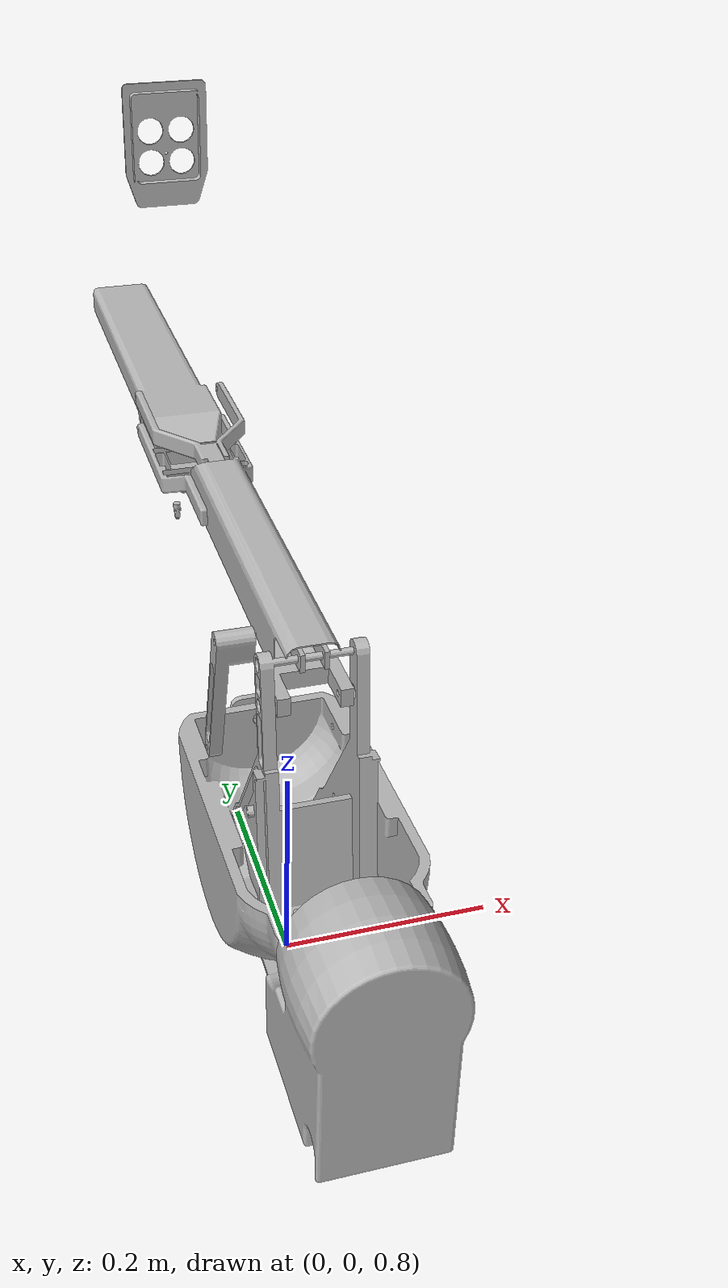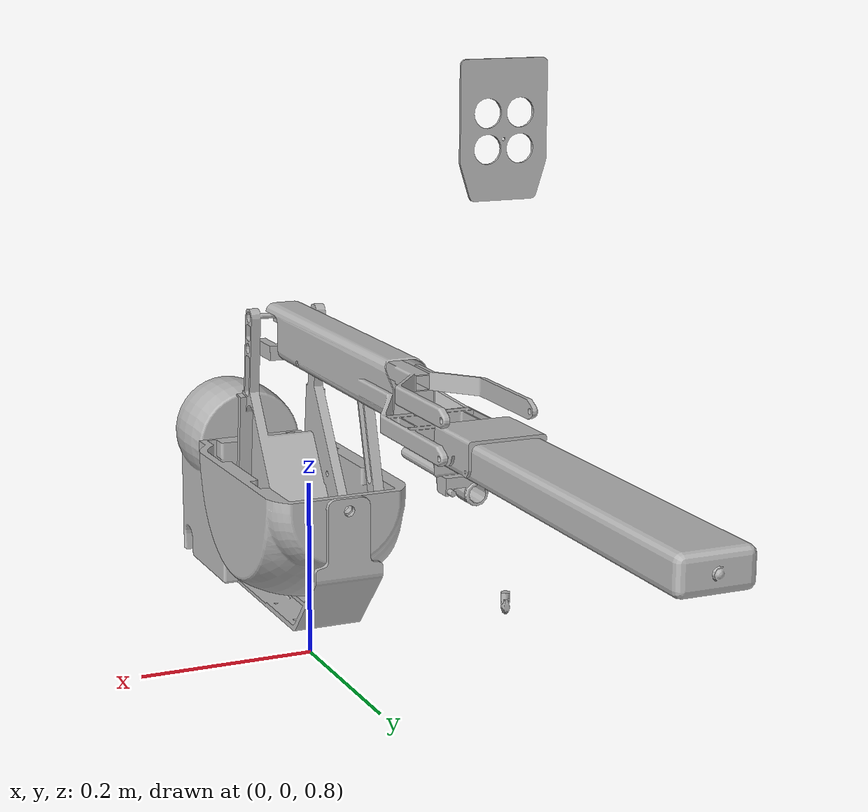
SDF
<sdf version="1.6">
  <model name="dvrk_psm">

  <include>
    <uri>model://PSM</uri>
      <name>PSM1</name>
      <pose> 0 0 1 0 0 0</pose>
  </include>

  <joint name='PSM1::rev_joint' type='fixed'>
   <child>PSM1::base_link</child>
   <parent>world</parent>
   <axis>
     <limit>
       <lower>-1.57</lower>
       <upper>1.57</upper>
     </limit>
     <dynamics>
       <damping>0</damping>
     </dynamics>
     <xyz>0 0 1</xyz>
   </axis>
 </joint>

 <plugin name='dvrk_plugins' filename='libdvrk_plugins.so'/>
 </model>
</sdf>

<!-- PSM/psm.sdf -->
<sdf version='1.6'>
  <model name='PSM'>
    <link name='base_link'>
      <pose frame=''>0 0 0 0 -0 0</pose>
      <inertial>
        <pose frame=''>-0 -0.17016 -0.085607 0 -0 0</pose>
        <mass>2.0161</mass>
        <inertia>
          <ixx>0</ixx>
          <ixy>0</ixy>
          <ixz>0</ixz>
          <iyy>0</iyy>
          <iyz>0</iyz>
          <izz>0</izz>
        </inertia>
      </inertial>
      <collision name='base_link_collision'>
        <pose frame=''>0 0 0 0 -0 0</pose>
        <geometry>
          <mesh>
            <scale>1 1 1</scale>
            <uri>model://PSM/meshes/base_link.STL</uri>
          </mesh>
        </geometry>
      </collision>
      <visual name='base_link_visual'>
        <pose frame=''>0 0 0 0 -0 0</pose>
        <geometry>
          <mesh>
            <scale>1 1 1</scale>
            <uri>model://PSM/meshes/base_link.STL</uri>
          </mesh>
        </geometry>
      </visual>
    </link>
    <link name='yaw_Link'>
      <pose frame=''>0 0 0 1.58642 -1.57079 -3e-06</pose>
      <inertial>
        <pose frame=''>-0.038769 7.8e-05 0.041596 0 -0 0</pose>
        <mass>1.4705</mass>
        <inertia>
          <ixx>0</ixx>
          <ixy>0</ixy>
          <ixz>0</ixz>
          <iyy>0</iyy>
          <iyz>0</iyz>
          <izz>0</izz>
        </inertia>
      </inertial>
      <collision name='yaw_Link_collision'>
        <pose frame=''>0 0 0 0 -0 0</pose>
        <geometry>
          <mesh>
            <scale>1 1 1</scale>
            <uri>model://PSM/meshes/yaw_Link.STL</uri>
          </mesh>
        </geometry>
      </collision>
      <visual name='yaw_Link_visual'>
        <pose frame=''>0 0 0 0 -0 0</pose>
        <geometry>
          <mesh>
            <scale>1 1 1</scale>
            <uri>model://PSM/meshes/yaw_Link.STL</uri>
          </mesh>
        </geometry>
      </visual>
    </link>
    <joint name='yaw_joint' type='revolute'>
      <child>yaw_Link</child>
      <parent>base_link</parent>
      <axis>
        <xyz>0 -1 -0</xyz>
        <limit>
          <lower>-1.605</lower>
          <upper>1.5994</upper>
          <effort>1000</effort>
          <velocity>10</velocity>
        </limit>
        <dynamics>
          <spring_reference>0</spring_reference>
          <spring_stiffness>0</spring_stiffness>
        </dynamics>
        <use_parent_model_frame>1</use_parent_model_frame>
      </axis>
    </joint>
    <link name='pitch_back_Link'>
      <pose frame=''>-0 -0.0296 0 1.5708 -1.28007 -1.5708</pose>
      <inertial>
        <pose frame=''>-0.012175 -0.036897 3.5e-05 0 -0 0</pose>
        <mass>0.99511</mass>
        <inertia>
          <ixx>0</ixx>
          <ixy>0</ixy>
          <ixz>0</ixz>
          <iyy>0</iyy>
          <iyz>0</iyz>
          <izz>0</izz>
        </inertia>
      </inertial>
      <collision name='pitch_back_Link_collision'>
        <pose frame=''>0 0 0 0 -0 0</pose>
        <geometry>
          <mesh>
            <scale>1 1 1</scale>
            <uri>model://PSM/meshes/pitch_back_Link.STL</uri>
          </mesh>
        </geometry>
      </collision>
      <visual name='pitch_back_Link_visual'>
        <pose frame=''>0 0 0 0 -0 0</pose>
        <geometry>
          <mesh>
            <scale>1 1 1</scale>
            <uri>model://PSM/meshes/pitch_back_Link.STL</uri>
          </mesh>
        </geometry>
      </visual>
    </link>
    <joint name='pitch_back_joint' type='revolute'>
      <child>pitch_back_Link</child>
      <parent>yaw_Link</parent>
      <axis>
        <xyz>-1 0 -0</xyz>
        <limit>
          <lower>-0.93556</lower>
          <upper>0.94249</upper>
          <effort>1000</effort>
          <velocity>10</velocity>
        </limit>
        <dynamics>
          <spring_reference>0</spring_reference>
          <spring_stiffness>0</spring_stiffness>
        </dynamics>
        <use_parent_model_frame>1</use_parent_model_frame>
      </axis>
    </joint>
    <link name='pitch_bottom_Link'>
      <pose frame=''>-0 -0.072597 0.143705 -1.5708 -2.4e-05 1.5708</pose>
      <inertial>
        <pose frame=''>0.25683 -0.010348 -6e-06 0 -0 0</pose>
        <mass>0.44569</mass>
        <inertia>
          <ixx>0</ixx>
          <ixy>0</ixy>
          <ixz>0</ixz>
          <iyy>0</iyy>
          <iyz>0</iyz>
          <izz>0</izz>
        </inertia>
      </inertial>
      <collision name='pitch_bottom_Link_collision'>
        <pose frame=''>0 0 0 0 -0 0</pose>
        <geometry>
          <mesh>
            <scale>1 1 1</scale>
            <uri>model://PSM/meshes/pitch_bottom_Link.STL</uri>
          </mesh>
        </geometry>
      </collision>
      <visual name='pitch_bottom_Link_visual'>
        <pose frame=''>0 0 0 0 -0 0</pose>
        <geometry>
          <mesh>
            <scale>1 1 1</scale>
            <uri>model://PSM/meshes/pitch_bottom_Link.STL</uri>
          </mesh>
        </geometry>
      </visual>
    </link>
    <joint name='pitch_bottom_joint' type='revolute'>
      <child>pitch_bottom_Link</child>
      <parent>pitch_back_Link</parent>
      <axis>
        <xyz>-1 0 -0</xyz>
        <limit>
          <lower>-0.94249</lower>
          <upper>0.93556</upper>
          <effort>1000</effort>
          <velocity>10</velocity>
        </limit>
        <dynamics>
          <spring_reference>0</spring_reference>
          <spring_stiffness>0</spring_stiffness>
        </dynamics>
        <use_parent_model_frame>1</use_parent_model_frame>
      </axis>
    </joint>
    <link name='pitch_end_Link'>
      <pose frame=''>0 0.443403 0.143718 -1.5708 -2.4e-05 1.5708</pose>
      <inertial>
        <pose frame=''>-0.001929 -0.13613 -0 0 -0 0</pose>
        <mass>2.091</mass>
        <inertia>
          <ixx>0</ixx>
          <ixy>0</ixy>
          <ixz>0</ixz>
          <iyy>0</iyy>
          <iyz>0</iyz>
          <izz>0</izz>
        </inertia>
      </inertial>
      <collision name='pitch_end_Link_collision'>
        <pose frame=''>0 0 0 0 -0 0</pose>
        <geometry>
          <mesh>
            <scale>1 1 1</scale>
            <uri>model://PSM/meshes/pitch_end_Link.STL</uri>
          </mesh>
        </geometry>
      </collision>
      <visual name='pitch_end_Link_visual'>
        <pose frame=''>0 0 0 0 -0 0</pose>
        <geometry>
          <mesh>
            <scale>1 1 1</scale>
            <uri>model://PSM/meshes/pitch_end_Link.STL</uri>
          </mesh>
        </geometry>
      </visual>
    </link>
    <joint name='pitch_end_joint' type='revolute'>
      <child>pitch_end_Link</child>
      <parent>pitch_bottom_Link</parent>
      <axis>
        <xyz>-1 0 -0</xyz>
        <limit>
          <lower>-0.93556</lower>
          <upper>0.94249</upper>
          <effort>1000</effort>
          <velocity>10</velocity>
        </limit>
        <dynamics>
          <spring_reference>0</spring_reference>
          <spring_stiffness>0</spring_stiffness>
        </dynamics>
        <use_parent_model_frame>1</use_parent_model_frame>
      </axis>
    </joint>
    <link name='main_insertion_Link'>
      <pose frame=''>0 0.486396 0.431809 -3.14159 2.4e-05 -1.5708</pose>
      <inertial>
        <pose frame=''>0.004056 -0.000109 0.010292 0 -0 0</pose>
        <mass>0.22491</mass>
        <inertia>
          <ixx>1.7667e-05</ixx>
          <ixy>-6.2173e-08</ixy>
          <ixz>1.2562e-05</ixz>
          <iyy>2.6598e-05</iyy>
          <iyz>8.744e-08</iyz>
          <izz>8.9322e-06</izz>
        </inertia>
      </inertial>
      <collision name='main_insertion_Link_collision'>
        <pose frame=''>0 0 0 0 -0 0</pose>
        <geometry>
          <mesh>
            <scale>1 1 1</scale>
            <uri>model://PSM/meshes/main_insertion_Link.STL</uri>
          </mesh>
        </geometry>
      </collision>
      <visual name='main_insertion_Link_visual'>
        <pose frame=''>0 0 0 0 -0 0</pose>
        <geometry>
          <mesh>
            <scale>1 1 1</scale>
            <uri>model://PSM/meshes/main_insertion_Link.STL</uri>
          </mesh>
        </geometry>
      </visual>
    </link>
    <joint name='main_insertion_joint' type='prismatic'>
      <child>main_insertion_Link</child>
      <parent>pitch_end_Link</parent>
      <axis>
        <xyz>0 -2.4e-05 -1</xyz>
        <limit>
          <lower>0</lower>
          <upper>0.24</upper>
          <effort>1000</effort>
          <velocity>1</velocity>
        </limit>
        <dynamics>
          <spring_reference>0</spring_reference>
          <spring_stiffness>0</spring_stiffness>
        </dynamics>
        <use_parent_model_frame>1</use_parent_model_frame>
      </axis>
    </joint>
    <link name='tool_roll_link'>
      <pose frame=''>0 0.486406 0.015609 3.14159 -2.4e-05 1.5708</pose>
      <inertial>
        <pose frame=''>-0 -0 -0.005823 0 -0 0</pose>
        <mass>0.00033225</mass>
        <inertia>
          <ixx>0</ixx>
          <ixy>0</ixy>
          <ixz>0</ixz>
          <iyy>0</iyy>
          <iyz>0</iyz>
          <izz>0</izz>
        </inertia>
      </inertial>
      <collision name='tool_roll_link_collision'>
        <pose frame=''>0 0 0 0 -0 0</pose>
        <geometry>
          <mesh>
            <scale>1 1 1</scale>
            <uri>model://PSM/meshes/tool_roll_link.STL</uri>
          </mesh>
        </geometry>
      </collision>
      <visual name='tool_roll_link_visual'>
        <pose frame=''>0 0 0 0 -0 0</pose>
        <geometry>
          <mesh>
            <scale>1 1 1</scale>
            <uri>model://PSM/meshes/tool_roll_link.STL</uri>
          </mesh>
        </geometry>
      </visual>
    </link>
    <joint name='tool_roll_joint' type='revolute'>
      <child>tool_roll_link</child>
      <parent>main_insertion_Link</parent>
      <axis>
        <xyz>-0 -2.4e-05 1</xyz>
        <limit>
          <lower>-3.14159</lower>
          <upper>3.14159</upper>
          <effort>1000</effort>
          <velocity>10</velocity>
        </limit>
        <dynamics>
          <spring_reference>0</spring_reference>
          <spring_stiffness>0</spring_stiffness>
        </dynamics>
        <use_parent_model_frame>1</use_parent_model_frame>
      </axis>
    </joint>
    <link name='tool_pitch_link'>
      <pose frame=''>0 0.486406 0.015609 -1.5708 1.57077 1.5708</pose>
      <inertial>
        <pose frame=''>0.003577 -4.9e-05 4e-06 0 -0 0</pose>
        <mass>0.00025977</mass>
        <inertia>
          <ixx>0</ixx>
          <ixy>0</ixy>
          <ixz>0</ixz>
          <iyy>0</iyy>
          <iyz>0</iyz>
          <izz>0</izz>
        </inertia>
      </inertial>
      <collision name='tool_pitch_link_collision'>
        <pose frame=''>0 0 0 0 -0 0</pose>
        <geometry>
          <mesh>
            <scale>1 1 1</scale>
            <uri>model://PSM/meshes/tool_pitch_link.STL</uri>
          </mesh>
        </geometry>
      </collision>
      <visual name='tool_pitch_link_visual'>
        <pose frame=''>0 0 0 0 -0 0</pose>
        <geometry>
          <mesh>
            <scale>1 1 1</scale>
            <uri>model://PSM/meshes/tool_pitch_link.STL</uri>
          </mesh>
        </geometry>
      </visual>
    </link>
    <joint name='tool_pitch_joint' type='revolute'>
      <child>tool_pitch_link</child>
      <parent>tool_roll_link</parent>
      <axis>
        <xyz>1 -0 0</xyz>
        <limit>
          <lower>-1.5708</lower>
          <upper>1.5708</upper>
          <effort>1000</effort>
          <velocity>10</velocity>
        </limit>
        <dynamics>
          <spring_reference>0</spring_reference>
          <spring_stiffness>0</spring_stiffness>
        </dynamics>
        <use_parent_model_frame>1</use_parent_model_frame>
      </axis>
    </joint>
    <link name='tool_yaw_link'>
      <pose frame=''>0 0.486456 0.006509 1.57077 0 3.14159</pose>
      <inertial>
        <pose frame=''>-0 0 -5e-05 0 -0 0</pose>
        <mass>6.6366e-06</mass>
        <inertia>
          <ixx>0</ixx>
          <ixy>0</ixy>
          <ixz>0</ixz>
          <iyy>0</iyy>
          <iyz>0</iyz>
          <izz>0</izz>
        </inertia>
      </inertial>
      <collision name='tool_yaw_link_collision'>
        <pose frame=''>0 0 0 0 -0 0</pose>
        <geometry>
          <mesh>
            <scale>1 1 1</scale>
            <uri>model://PSM/meshes/tool_yaw_link.STL</uri>
          </mesh>
        </geometry>
      </collision>
      <visual name='tool_yaw_link_visual'>
        <pose frame=''>0 0 0 0 -0 0</pose>
        <geometry>
          <mesh>
            <scale>1 1 1</scale>
            <uri>model://PSM/meshes/tool_yaw_link.STL</uri>
          </mesh>
        </geometry>
      </visual>
    </link>
    <joint name='tool_yaw_joint' type='revolute'>
      <child>tool_yaw_link</child>
      <parent>tool_pitch_link</parent>
      <axis>
        <xyz>0 1 2.4e-05</xyz>
        <limit>
          <lower>-1.5708</lower>
          <upper>1.5708</upper>
          <effort>1000</effort>
          <velocity>10</velocity>
        </limit>
        <dynamics>
          <spring_reference>0</spring_reference>
          <spring_stiffness>0</spring_stiffness>
        </dynamics>
        <use_parent_model_frame>1</use_parent_model_frame>
      </axis>
    </joint>
    <link name='tool_gripper1_link'>
      <pose frame=''>0 0.486456 0.006509 1.57077 0 3.14159</pose>
      <inertial>
        <pose frame=''>0.000189 0.001353 -0.000917 0 -0 0</pose>
        <mass>3.907e-05</mass>
        <inertia>
          <ixx>0</ixx>
          <ixy>0</ixy>
          <ixz>0</ixz>
          <iyy>0</iyy>
          <iyz>0</iyz>
          <izz>0</izz>
        </inertia>
      </inertial>
      <collision name='tool_gripper1_link_collision'>
        <pose frame=''>0 0 0 0 -0 0</pose>
        <geometry>
          <mesh>
            <scale>1 1 1</scale>
            <uri>model://PSM/meshes/tool_gripper1_link.STL</uri>
          </mesh>
        </geometry>
      </collision>
      <visual name='tool_gripper1_link_visual'>
        <pose frame=''>0 0 0 0 -0 0</pose>
        <geometry>
          <mesh>
            <scale>1 1 1</scale>
            <uri>model://PSM/meshes/tool_gripper1_link.STL</uri>
          </mesh>
        </geometry>
      </visual>
    </link>
    <joint name='tool_gripper1_joint' type='revolute'>
      <child>tool_gripper1_link</child>
      <parent>tool_yaw_link</parent>
      <axis>
        <xyz>0 1 2.4e-05</xyz>
        <limit>
          <lower>0</lower>
          <upper>1</upper>
          <effort>0</effort>
          <velocity>0</velocity>
        </limit>
        <dynamics>
          <spring_reference>0</spring_reference>
          <spring_stiffness>0</spring_stiffness>
        </dynamics>
        <use_parent_model_frame>1</use_parent_model_frame>
      </axis>
    </joint>
    <link name='tool_gripper2_link'>
      <pose frame=''>0 0.486456 0.006509 1.57077 0 3.14159</pose>
      <inertial>
        <pose frame=''>-0.000189 0.001353 0.000907 0 -0 0</pose>
        <mass>3.907e-05</mass>
        <inertia>
          <ixx>0</ixx>
          <ixy>0</ixy>
          <ixz>0</ixz>
          <iyy>0</iyy>
          <iyz>0</iyz>
          <izz>0</izz>
        </inertia>
      </inertial>
      <collision name='tool_gripper2_link_collision'>
        <pose frame=''>0 0 0 0 -0 0</pose>
        <geometry>
          <mesh>
            <scale>1 1 1</scale>
            <uri>model://PSM/meshes/tool_gripper2_link.STL</uri>
          </mesh>
        </geometry>
      </collision>
      <visual name='tool_gripper2_link_visual'>
        <pose frame=''>0 0 0 0 -0 0</pose>
        <geometry>
          <mesh>
            <scale>1 1 1</scale>
            <uri>model://PSM/meshes/tool_gripper2_link.STL</uri>
          </mesh>
        </geometry>
      </visual>
    </link>
    <joint name='tool_gripper2_joint' type='revolute'>
      <child>tool_gripper2_link</child>
      <parent>tool_yaw_link</parent>
      <axis>
        <xyz>0 1 2.4e-05</xyz>
        <limit>
          <lower>0</lower>
          <upper>1</upper>
          <effort>0</effort>
          <velocity>0</velocity>
        </limit>
        <dynamics>
          <spring_reference>0</spring_reference>
          <spring_stiffness>0</spring_stiffness>
        </dynamics>
        <use_parent_model_frame>1</use_parent_model_frame>
      </axis>
    </joint>
    <link name='pitch_top_Link'>
      <pose frame=''>-0 -0.068717 0.179999 -1.5708 0 1.5708</pose>
      <inertial>
        <pose frame=''>0.31246 -0.000566 -0 0 -0 0</pose>
        <mass>0.17841</mass>
        <inertia>
          <ixx>0</ixx>
          <ixy>0</ixy>
          <ixz>0</ixz>
          <iyy>0</iyy>
          <iyz>0</iyz>
          <izz>0</izz>
        </inertia>
      </inertial>
      <collision name='pitch_top_Link_collision'>
        <pose frame=''>0 0 0 0 -0 0</pose>
        <geometry>
          <mesh>
            <scale>1 1 1</scale>
            <uri>model://PSM/meshes/pitch_top_Link.STL</uri>
          </mesh>
        </geometry>
      </collision>
      <visual name='pitch_top_Link_visual'>
        <pose frame=''>0 0 0 0 -0 0</pose>
        <geometry>
          <mesh>
            <scale>1 1 1</scale>
            <uri>model://PSM/meshes/pitch_top_Link.STL</uri>
          </mesh>
        </geometry>
      </visual>
    </link>
    <joint name='pitch_top_joint' type='revolute'>
      <child>pitch_top_Link</child>
      <parent>pitch_back_Link</parent>
      <axis>
        <xyz>-1 0 -0</xyz>
        <limit>
          <lower>-0.94249</lower>
          <upper>0.93556</upper>
          <effort>1000</effort>
          <velocity>10</velocity>
        </limit>
        <dynamics>
          <spring_reference>0</spring_reference>
          <spring_stiffness>0</spring_stiffness>
        </dynamics>
        <use_parent_model_frame>1</use_parent_model_frame>
      </axis>
    </joint>
    <link name='pitch_front_Link'>
      <pose frame=''>0 0.0664 0 1.5708 -1.28007 -1.5708</pose>
      <inertial>
        <pose frame=''>0.096269 0 0.047551 0 -0 0</pose>
        <mass>0.074425</mass>
        <inertia>
          <ixx>0</ixx>
          <ixy>0</ixy>
          <ixz>0</ixz>
          <iyy>0</iyy>
          <iyz>0</iyz>
          <izz>0</izz>
        </inertia>
      </inertial>
      <collision name='pitch_front_Link_collision'>
        <pose frame=''>0 0 0 0 -0 0</pose>
        <geometry>
          <mesh>
            <scale>1 1 1</scale>
            <uri>model://PSM/meshes/pitch_front_Link.STL</uri>
          </mesh>
        </geometry>
      </collision>
      <visual name='pitch_front_Link_visual'>
        <pose frame=''>0 0 0 0 -0 0</pose>
        <geometry>
          <mesh>
            <scale>1 1 1</scale>
            <uri>model://PSM/meshes/pitch_front_Link.STL</uri>
          </mesh>
        </geometry>
      </visual>
    </link>
    <joint name='pitch_front_joint' type='revolute'>
      <child>pitch_front_Link</child>
      <parent>yaw_Link</parent>
      <axis>
        <xyz>-1 0 -0</xyz>
        <limit>
          <lower>-0.93556</lower>
          <upper>0.94249</upper>
          <effort>1000</effort>
          <velocity>10</velocity>
        </limit>
        <dynamics>
          <spring_reference>0</spring_reference>
          <spring_stiffness>0</spring_stiffness>
        </dynamics>
        <use_parent_model_frame>1</use_parent_model_frame>
      </axis>
    </joint>

    <joint name='pitch_front_bottom_joint' type='revolute'>
      <pose>0.096 0 0 0 0 0 </pose>
      <child>pitch_bottom_Link</child>
      <parent>pitch_front_Link</parent>
      <axis>
        <xyz>-1 0 0</xyz>
        <limit>
          <lower>-0.93556</lower>
          <upper>0.94249</upper>
          <effort>1000</effort>
          <velocity>1</velocity>
        </limit>
        <dynamics>
          <spring_reference>0</spring_reference>
          <spring_stiffness>0</spring_stiffness>
        </dynamics>
        <use_parent_model_frame>1</use_parent_model_frame>
      </axis>
    </joint>

    <joint name='pitch_top_end_joint' type='revolute'>
      <pose>0.00388 -0.036293189  0 0 0 0 </pose>
      <child>pitch_end_Link</child>
      <parent>pitch_top_Link</parent>
      <axis>
        <xyz>-1 0 0</xyz>
        <limit>
          <lower>-0.93556</lower>
          <upper>0.94249</upper>
          <effort>1000</effort>
          <velocity>1</velocity>
        </limit>
        <dynamics>
          <spring_reference>0</spring_reference>
          <spring_stiffness>0</spring_stiffness>
        </dynamics>
        <use_parent_model_frame>1</use_parent_model_frame>
      </axis>
    </joint>
  </model>
</sdf>
